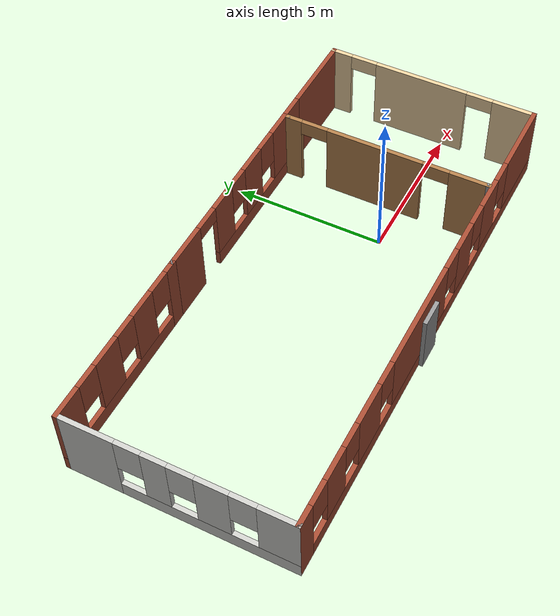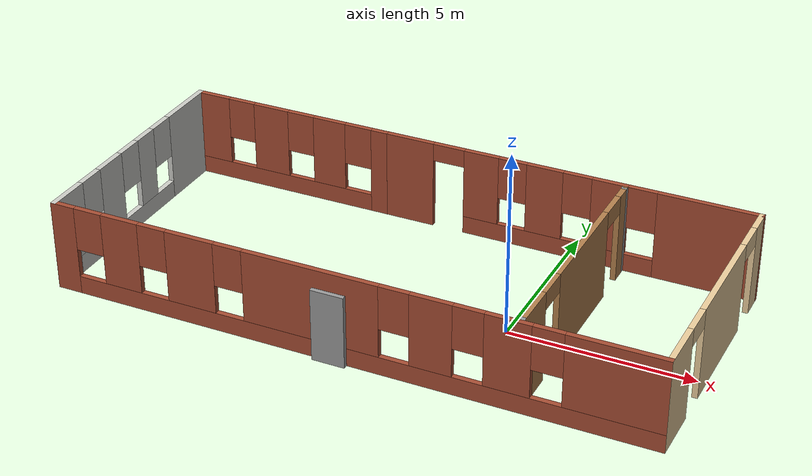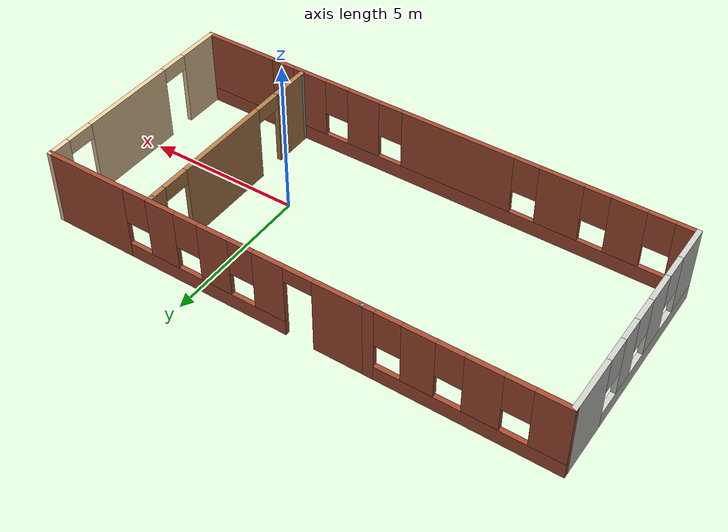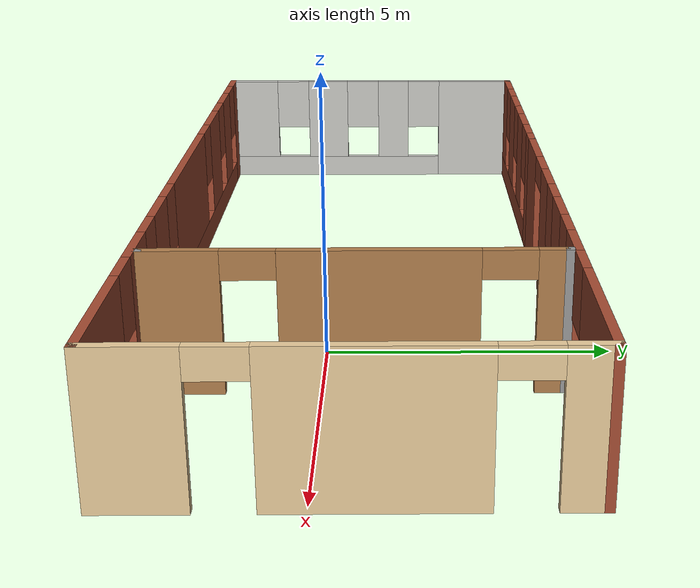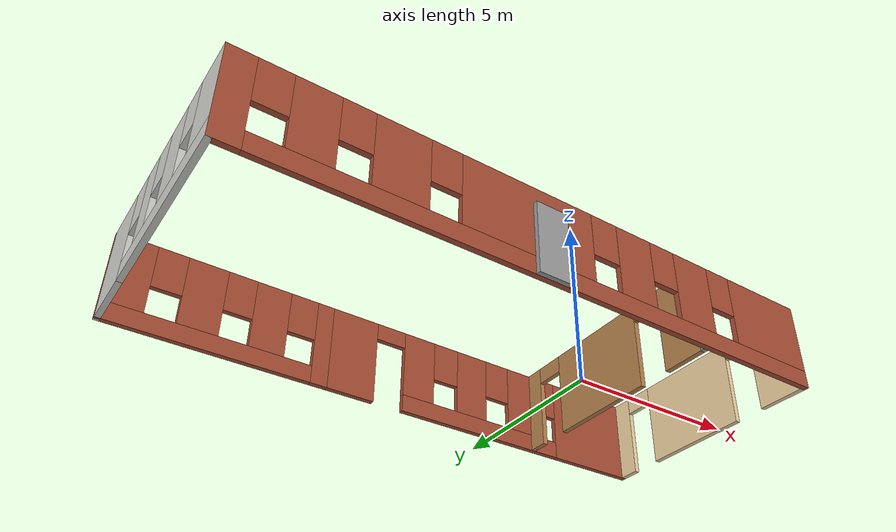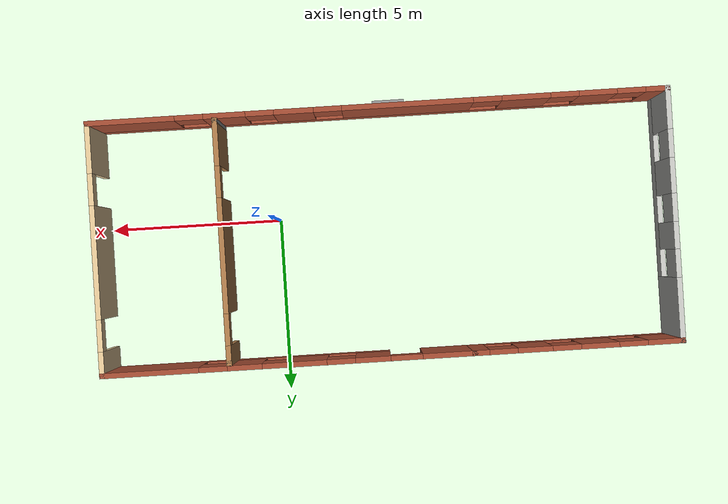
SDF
<?xml version='1.0'?>
<sdf version='1.6'>
  <model name='building'>
    <pose frame=''>-3.0512 0.573941 0 0 -0 0</pose>
    <link name='Door_1'>
      <collision name='Door_1_Collision'>
        <geometry>
          <box>
            <size>0.9 0.17 2</size>
          </box>
        </geometry>
        <pose frame=''>0 0 1 0 -0 0</pose>
      </collision>
      <visual name='Door_1_Visual'>
        <pose frame=''>0 0 1 0 -0 0</pose>
        <geometry>
          <box>
            <size>0.9 0.17 2</size>
          </box>
        </geometry>
        <material>
          <script>
            <uri>file://media/materials/scripts/gazebo.material</uri>
            <name>Gazebo/Grey</name>
          </script>
        </material>
      </visual>
      <pose frame=''>-0.312637 -3.66675 0 0 -0 0</pose>
    </link>
    <link name='Wall_0'>
      <pose frame=''>-5.25 3.55 0 0 -0 3.14159</pose>
      <visual name='Wall_0_Visual_0'>
        <pose frame=''>-2.75771 0 1.25 0 -0 0</pose>
        <geometry>
          <box>
            <size>0.484571 0.15 2.5</size>
          </box>
        </geometry>
        <material>
          <script>
            <uri>file://media/materials/scripts/gazebo.material</uri>
            <name>Gazebo/Bricks</name>
          </script>
          <ambient>0.921569 0.807843 0.615686 1</ambient>
        </material>
        <meta>
          <layer>0</layer>
        </meta>
      </visual>
      <collision name='Wall_0_Collision_0'>
        <geometry>
          <box>
            <size>0.484571 0.15 2.5</size>
          </box>
        </geometry>
        <pose frame=''>-2.75771 0 1.25 0 -0 0</pose>
      </collision>
      <visual name='Wall_0_Visual_1'>
        <pose frame=''>0.242286 0 0.25 0 -0 0</pose>
        <geometry>
          <box>
            <size>5.51543 0.15 0.5</size>
          </box>
        </geometry>
        <material>
          <script>
            <uri>file://media/materials/scripts/gazebo.material</uri>
            <name>Gazebo/Bricks</name>
          </script>
          <ambient>0.921569 0.807843 0.615686 1</ambient>
        </material>
        <meta>
          <layer>0</layer>
        </meta>
      </visual>
      <collision name='Wall_0_Collision_1'>
        <geometry>
          <box>
            <size>5.51543 0.15 0.5</size>
          </box>
        </geometry>
        <pose frame=''>0.242286 0 0.25 0 -0 0</pose>
      </collision>
      <visual name='Wall_0_Visual_2'>
        <pose frame=''>-1.2249 0 1.5 0 -0 0</pose>
        <geometry>
          <box>
            <size>0.981057 0.15 2</size>
          </box>
        </geometry>
        <material>
          <script>
            <uri>file://media/materials/scripts/gazebo.material</uri>
            <name>Gazebo/Bricks</name>
          </script>
          <ambient>0.921569 0.807843 0.615686 1</ambient>
        </material>
        <meta>
          <layer>0</layer>
        </meta>
      </visual>
      <collision name='Wall_0_Collision_2'>
        <geometry>
          <box>
            <size>0.981057 0.15 2</size>
          </box>
        </geometry>
        <pose frame=''>-1.2249 0 1.5 0 -0 0</pose>
      </collision>
      <visual name='Wall_0_Visual_3'>
        <pose frame=''>0.602418 0 1.5 0 -0 0</pose>
        <geometry>
          <box>
            <size>1.07358 0.15 2</size>
          </box>
        </geometry>
        <material>
          <script>
            <uri>file://media/materials/scripts/gazebo.material</uri>
            <name>Gazebo/Bricks</name>
          </script>
          <ambient>0.921569 0.807843 0.615686 1</ambient>
        </material>
        <meta>
          <layer>0</layer>
        </meta>
      </visual>
      <collision name='Wall_0_Collision_3'>
        <geometry>
          <box>
            <size>1.07358 0.15 2</size>
          </box>
        </geometry>
        <pose frame=''>0.602418 0 1.5 0 -0 0</pose>
      </collision>
      <visual name='Wall_0_Visual_4'>
        <pose frame=''>2.4696 0 1.5 0 -0 0</pose>
        <geometry>
          <box>
            <size>1.06079 0.15 2</size>
          </box>
        </geometry>
        <material>
          <script>
            <uri>file://media/materials/scripts/gazebo.material</uri>
            <name>Gazebo/Bricks</name>
          </script>
          <ambient>0.921569 0.807843 0.615686 1</ambient>
        </material>
        <meta>
          <layer>0</layer>
        </meta>
      </visual>
      <collision name='Wall_0_Collision_4'>
        <geometry>
          <box>
            <size>1.06079 0.15 2</size>
          </box>
        </geometry>
        <pose frame=''>2.4696 0 1.5 0 -0 0</pose>
      </collision>
      <visual name='Wall_0_Visual_5'>
        <pose frame=''>-2.11543 0 1.9 0 -0 0</pose>
        <geometry>
          <box>
            <size>0.8 0.15 1.2</size>
          </box>
        </geometry>
        <material>
          <script>
            <uri>file://media/materials/scripts/gazebo.material</uri>
            <name>Gazebo/Bricks</name>
          </script>
          <ambient>0.921569 0.807843 0.615686 1</ambient>
        </material>
        <meta>
          <layer>0</layer>
        </meta>
      </visual>
      <collision name='Wall_0_Collision_5'>
        <geometry>
          <box>
            <size>0.8 0.15 1.2</size>
          </box>
        </geometry>
        <pose frame=''>-2.11543 0 1.9 0 -0 0</pose>
      </collision>
      <visual name='Wall_0_Visual_6'>
        <pose frame=''>-0.334372 0 1.9 0 -0 0</pose>
        <geometry>
          <box>
            <size>0.8 0.15 1.2</size>
          </box>
        </geometry>
        <material>
          <script>
            <uri>file://media/materials/scripts/gazebo.material</uri>
            <name>Gazebo/Bricks</name>
          </script>
          <ambient>0.921569 0.807843 0.615686 1</ambient>
        </material>
        <meta>
          <layer>0</layer>
        </meta>
      </visual>
      <collision name='Wall_0_Collision_6'>
        <geometry>
          <box>
            <size>0.8 0.15 1.2</size>
          </box>
        </geometry>
        <pose frame=''>-0.334372 0 1.9 0 -0 0</pose>
      </collision>
      <visual name='Wall_0_Visual_7'>
        <pose frame=''>1.53921 0 1.9 0 -0 0</pose>
        <geometry>
          <box>
            <size>0.8 0.15 1.2</size>
          </box>
        </geometry>
        <material>
          <script>
            <uri>file://media/materials/scripts/gazebo.material</uri>
            <name>Gazebo/Bricks</name>
          </script>
          <ambient>0.921569 0.807843 0.615686 1</ambient>
        </material>
        <meta>
          <layer>0</layer>
        </meta>
      </visual>
      <collision name='Wall_0_Collision_7'>
        <geometry>
          <box>
            <size>0.8 0.15 1.2</size>
          </box>
        </geometry>
        <pose frame=''>1.53921 0 1.9 0 -0 0</pose>
      </collision>
    </link>
    <link name='Wall_1'>
      <pose frame=''>-8.175 0 0 0 0 -1.5708</pose>
      <visual name='Wall_1_Visual_0'>
        <pose frame=''>-2.70036 0 1.25 0 -0 0</pose>
        <geometry>
          <box>
            <size>1.84928 0.15 2.5</size>
          </box>
        </geometry>
        <material>
          <script>
            <uri>file://media/materials/scripts/gazebo.material</uri>
            <name>Gazebo/CeilingTiled</name>
          </script>
          <ambient>0.921569 0.807843 0.615686 1</ambient>
        </material>
        <meta>
          <layer>0</layer>
        </meta>
      </visual>
      <collision name='Wall_1_Collision_0'>
        <geometry>
          <box>
            <size>1.84928 0.15 2.5</size>
          </box>
        </geometry>
        <pose frame=''>-2.70036 0 1.25 0 -0 0</pose>
      </collision>
      <visual name='Wall_1_Visual_1'>
        <pose frame=''>0.924639 0 0.25 0 -0 0</pose>
        <geometry>
          <box>
            <size>5.40072 0.15 0.5</size>
          </box>
        </geometry>
        <material>
          <script>
            <uri>file://media/materials/scripts/gazebo.material</uri>
            <name>Gazebo/CeilingTiled</name>
          </script>
          <ambient>0.921569 0.807843 0.615686 1</ambient>
        </material>
        <meta>
          <layer>0</layer>
        </meta>
      </visual>
      <collision name='Wall_1_Collision_1'>
        <geometry>
          <box>
            <size>5.40072 0.15 0.5</size>
          </box>
        </geometry>
        <pose frame=''>0.924639 0 0.25 0 -0 0</pose>
      </collision>
      <visual name='Wall_1_Visual_2'>
        <pose frame=''>-0.589282 0 1.5 0 -0 0</pose>
        <geometry>
          <box>
            <size>0.772881 0.15 2</size>
          </box>
        </geometry>
        <material>
          <script>
            <uri>file://media/materials/scripts/gazebo.material</uri>
            <name>Gazebo/CeilingTiled</name>
          </script>
          <ambient>0.921569 0.807843 0.615686 1</ambient>
        </material>
        <meta>
          <layer>0</layer>
        </meta>
      </visual>
      <collision name='Wall_1_Collision_2'>
        <geometry>
          <box>
            <size>0.772881 0.15 2</size>
          </box>
        </geometry>
        <pose frame=''>-0.589282 0 1.5 0 -0 0</pose>
      </collision>
      <visual name='Wall_1_Visual_3'>
        <pose frame=''>1.09925 0 1.5 0 -0 0</pose>
        <geometry>
          <box>
            <size>1.00419 0.15 2</size>
          </box>
        </geometry>
        <material>
          <script>
            <uri>file://media/materials/scripts/gazebo.material</uri>
            <name>Gazebo/CeilingTiled</name>
          </script>
          <ambient>0.921569 0.807843 0.615686 1</ambient>
        </material>
        <meta>
          <layer>0</layer>
        </meta>
      </visual>
      <collision name='Wall_1_Collision_3'>
        <geometry>
          <box>
            <size>1.00419 0.15 2</size>
          </box>
        </geometry>
        <pose frame=''>1.09925 0 1.5 0 -0 0</pose>
      </collision>
      <visual name='Wall_1_Visual_4'>
        <pose frame=''>3.01317 0 1.5 0 -0 0</pose>
        <geometry>
          <box>
            <size>1.22365 0.15 2</size>
          </box>
        </geometry>
        <material>
          <script>
            <uri>file://media/materials/scripts/gazebo.material</uri>
            <name>Gazebo/CeilingTiled</name>
          </script>
          <ambient>0.921569 0.807843 0.615686 1</ambient>
        </material>
        <meta>
          <layer>0</layer>
        </meta>
      </visual>
      <collision name='Wall_1_Collision_4'>
        <geometry>
          <box>
            <size>1.22365 0.15 2</size>
          </box>
        </geometry>
        <pose frame=''>3.01317 0 1.5 0 -0 0</pose>
      </collision>
      <visual name='Wall_1_Visual_5'>
        <pose frame=''>-1.37572 0 1.9 0 -0 0</pose>
        <geometry>
          <box>
            <size>0.8 0.15 1.2</size>
          </box>
        </geometry>
        <material>
          <script>
            <uri>file://media/materials/scripts/gazebo.material</uri>
            <name>Gazebo/CeilingTiled</name>
          </script>
          <ambient>0.921569 0.807843 0.615686 1</ambient>
        </material>
        <meta>
          <layer>0</layer>
        </meta>
      </visual>
      <collision name='Wall_1_Collision_5'>
        <geometry>
          <box>
            <size>0.8 0.15 1.2</size>
          </box>
        </geometry>
        <pose frame=''>-1.37572 0 1.9 0 -0 0</pose>
      </collision>
      <visual name='Wall_1_Visual_6'>
        <pose frame=''>0.197158 0 1.9 0 -0 0</pose>
        <geometry>
          <box>
            <size>0.8 0.15 1.2</size>
          </box>
        </geometry>
        <material>
          <script>
            <uri>file://media/materials/scripts/gazebo.material</uri>
            <name>Gazebo/CeilingTiled</name>
          </script>
          <ambient>0.921569 0.807843 0.615686 1</ambient>
        </material>
        <meta>
          <layer>0</layer>
        </meta>
      </visual>
      <collision name='Wall_1_Collision_6'>
        <geometry>
          <box>
            <size>0.8 0.15 1.2</size>
          </box>
        </geometry>
        <pose frame=''>0.197158 0 1.9 0 -0 0</pose>
      </collision>
      <visual name='Wall_1_Visual_7'>
        <pose frame=''>2.00135 0 1.9 0 -0 0</pose>
        <geometry>
          <box>
            <size>0.8 0.15 1.2</size>
          </box>
        </geometry>
        <material>
          <script>
            <uri>file://media/materials/scripts/gazebo.material</uri>
            <name>Gazebo/CeilingTiled</name>
          </script>
          <ambient>0.921569 0.807843 0.615686 1</ambient>
        </material>
        <meta>
          <layer>0</layer>
        </meta>
      </visual>
      <collision name='Wall_1_Collision_7'>
        <geometry>
          <box>
            <size>0.8 0.15 1.2</size>
          </box>
        </geometry>
        <pose frame=''>2.00135 0 1.9 0 -0 0</pose>
      </collision>
    </link>
    <link name='Wall_10'>
      <pose frame=''>4.59105 -0.011889 0 0 -0 1.5708</pose>
      <visual name='Wall_10_Visual_0'>
        <pose frame=''>-2.81938 0 1.25 0 -0 0</pose>
        <geometry>
          <box>
            <size>1.36124 0.15 2.5</size>
          </box>
        </geometry>
        <material>
          <script>
            <uri>file://media/materials/scripts/gazebo.material</uri>
            <name>Gazebo/Wood</name>
          </script>
          <ambient>1 1 1 1</ambient>
        </material>
        <meta>
          <layer>0</layer>
        </meta>
      </visual>
      <collision name='Wall_10_Collision_0'>
        <geometry>
          <box>
            <size>1.36124 0.15 2.5</size>
          </box>
        </geometry>
        <pose frame=''>-2.81938 0 1.25 0 -0 0</pose>
      </collision>
      <visual name='Wall_10_Visual_1'>
        <pose frame=''>0.392996 0 1.25 0 -0 0</pose>
        <geometry>
          <box>
            <size>3.26351 0.15 2.5</size>
          </box>
        </geometry>
        <material>
          <script>
            <uri>file://media/materials/scripts/gazebo.material</uri>
            <name>Gazebo/Wood</name>
          </script>
          <ambient>1 1 1 1</ambient>
        </material>
        <meta>
          <layer>0</layer>
        </meta>
      </visual>
      <collision name='Wall_10_Collision_1'>
        <geometry>
          <box>
            <size>3.26351 0.15 2.5</size>
          </box>
        </geometry>
        <pose frame=''>0.392996 0 1.25 0 -0 0</pose>
      </collision>
      <visual name='Wall_10_Visual_2'>
        <pose frame=''>3.21238 0 1.25 0 -0 0</pose>
        <geometry>
          <box>
            <size>0.575249 0.15 2.5</size>
          </box>
        </geometry>
        <material>
          <script>
            <uri>file://media/materials/scripts/gazebo.material</uri>
            <name>Gazebo/Wood</name>
          </script>
          <ambient>1 1 1 1</ambient>
        </material>
        <meta>
          <layer>0</layer>
        </meta>
      </visual>
      <collision name='Wall_10_Collision_2'>
        <geometry>
          <box>
            <size>0.575249 0.15 2.5</size>
          </box>
        </geometry>
        <pose frame=''>3.21238 0 1.25 0 -0 0</pose>
      </collision>
      <visual name='Wall_10_Visual_3'>
        <pose frame=''>-1.68876 0 2.25 0 -0 0</pose>
        <geometry>
          <box>
            <size>0.9 0.15 0.5</size>
          </box>
        </geometry>
        <material>
          <script>
            <uri>file://media/materials/scripts/gazebo.material</uri>
            <name>Gazebo/Wood</name>
          </script>
          <ambient>1 1 1 1</ambient>
        </material>
        <meta>
          <layer>0</layer>
        </meta>
      </visual>
      <collision name='Wall_10_Collision_3'>
        <geometry>
          <box>
            <size>0.9 0.15 0.5</size>
          </box>
        </geometry>
        <pose frame=''>-1.68876 0 2.25 0 -0 0</pose>
      </collision>
      <visual name='Wall_10_Visual_4'>
        <pose frame=''>2.47475 0 2.25 0 -0 0</pose>
        <geometry>
          <box>
            <size>0.9 0.15 0.5</size>
          </box>
        </geometry>
        <material>
          <script>
            <uri>file://media/materials/scripts/gazebo.material</uri>
            <name>Gazebo/Wood</name>
          </script>
          <ambient>1 1 1 1</ambient>
        </material>
        <meta>
          <layer>0</layer>
        </meta>
      </visual>
      <collision name='Wall_10_Collision_4'>
        <geometry>
          <box>
            <size>0.9 0.15 0.5</size>
          </box>
        </geometry>
        <pose frame=''>2.47475 0 2.25 0 -0 0</pose>
      </collision>
    </link>
    <link name='Wall_11'>
      <collision name='Wall_11_Collision'>
        <geometry>
          <box>
            <size>0.15 0.15 2.5</size>
          </box>
        </geometry>
        <pose frame=''>0 0 1.25 0 -0 0</pose>
      </collision>
      <visual name='Wall_11_Visual'>
        <pose frame=''>0 0 1.25 0 -0 0</pose>
        <geometry>
          <box>
            <size>0.15 0.15 2.5</size>
          </box>
        </geometry>
        <material>
          <script>
            <uri>file://media/materials/scripts/gazebo.material</uri>
            <name>Gazebo/Grey</name>
          </script>
          <ambient>1 1 1 1</ambient>
        </material>
        <meta>
          <layer>0</layer>
        </meta>
      </visual>
      <pose frame=''>4.59105 3.41311 0 0 -0 0</pose>
    </link>
    <link name='Wall_2'>
      <pose frame=''>0 -3.55 0 0 -0 0</pose>
      <visual name='Wall_2_Visual_0'>
        <pose frame=''>-7.90465 0 1.25 0 -0 0</pose>
        <geometry>
          <box>
            <size>0.690703 0.15 2.5</size>
          </box>
        </geometry>
        <material>
          <script>
            <uri>file://media/materials/scripts/gazebo.material</uri>
            <name>Gazebo/Bricks</name>
          </script>
          <ambient>0.921569 0.807843 0.615686 1</ambient>
        </material>
        <meta>
          <layer>0</layer>
        </meta>
      </visual>
      <collision name='Wall_2_Collision_0'>
        <geometry>
          <box>
            <size>0.690703 0.15 2.5</size>
          </box>
        </geometry>
        <pose frame=''>-7.90465 0 1.25 0 -0 0</pose>
      </collision>
      <visual name='Wall_2_Visual_1'>
        <pose frame=''>0.345351 0 0.25 0 -0 0</pose>
        <geometry>
          <box>
            <size>15.8093 0.15 0.5</size>
          </box>
        </geometry>
        <material>
          <script>
            <uri>file://media/materials/scripts/gazebo.material</uri>
            <name>Gazebo/Bricks</name>
          </script>
          <ambient>0.921569 0.807843 0.615686 1</ambient>
        </material>
        <meta>
          <layer>0</layer>
        </meta>
      </visual>
      <collision name='Wall_2_Collision_1'>
        <geometry>
          <box>
            <size>15.8093 0.15 0.5</size>
          </box>
        </geometry>
        <pose frame=''>0.345351 0 0.25 0 -0 0</pose>
      </collision>
      <visual name='Wall_2_Visual_2'>
        <pose frame=''>-6.22251 0 1.5 0 -0 0</pose>
        <geometry>
          <box>
            <size>1.07358 0.15 2</size>
          </box>
        </geometry>
        <material>
          <script>
            <uri>file://media/materials/scripts/gazebo.material</uri>
            <name>Gazebo/Bricks</name>
          </script>
          <ambient>0.921569 0.807843 0.615686 1</ambient>
        </material>
        <meta>
          <layer>0</layer>
        </meta>
      </visual>
      <collision name='Wall_2_Collision_2'>
        <geometry>
          <box>
            <size>1.07358 0.15 2</size>
          </box>
        </geometry>
        <pose frame=''>-6.22251 0 1.5 0 -0 0</pose>
      </collision>
      <visual name='Wall_2_Visual_3'>
        <pose frame=''>-4.19858 0 1.5 0 -0 0</pose>
        <geometry>
          <box>
            <size>1.37428 0.15 2</size>
          </box>
        </geometry>
        <material>
          <script>
            <uri>file://media/materials/scripts/gazebo.material</uri>
            <name>Gazebo/Bricks</name>
          </script>
          <ambient>0.921569 0.807843 0.615686 1</ambient>
        </material>
        <meta>
          <layer>0</layer>
        </meta>
      </visual>
      <collision name='Wall_2_Collision_3'>
        <geometry>
          <box>
            <size>1.37428 0.15 2</size>
          </box>
        </geometry>
        <pose frame=''>-4.19858 0 1.5 0 -0 0</pose>
      </collision>
      <visual name='Wall_2_Visual_4'>
        <pose frame=''>-0.856206 0 1.5 0 -0 0</pose>
        <geometry>
          <box>
            <size>3.71047 0.15 2</size>
          </box>
        </geometry>
        <material>
          <script>
            <uri>file://media/materials/scripts/gazebo.material</uri>
            <name>Gazebo/Bricks</name>
          </script>
          <ambient>0.921569 0.807843 0.615686 1</ambient>
        </material>
        <meta>
          <layer>0</layer>
        </meta>
      </visual>
      <collision name='Wall_2_Collision_4'>
        <geometry>
          <box>
            <size>3.71047 0.15 2</size>
          </box>
        </geometry>
        <pose frame=''>-0.856206 0 1.5 0 -0 0</pose>
      </collision>
      <visual name='Wall_2_Visual_5'>
        <pose frame=''>2.35895 0 1.5 0 -0 0</pose>
        <geometry>
          <box>
            <size>1.11984 0.15 2</size>
          </box>
        </geometry>
        <material>
          <script>
            <uri>file://media/materials/scripts/gazebo.material</uri>
            <name>Gazebo/Bricks</name>
          </script>
          <ambient>0.921569 0.807843 0.615686 1</ambient>
        </material>
        <meta>
          <layer>0</layer>
        </meta>
      </visual>
      <collision name='Wall_2_Collision_5'>
        <geometry>
          <box>
            <size>1.11984 0.15 2</size>
          </box>
        </geometry>
        <pose frame=''>2.35895 0 1.5 0 -0 0</pose>
      </collision>
      <visual name='Wall_2_Visual_6'>
        <pose frame=''>4.31348 0 1.5 0 -0 0</pose>
        <geometry>
          <box>
            <size>1.18923 0.15 2</size>
          </box>
        </geometry>
        <material>
          <script>
            <uri>file://media/materials/scripts/gazebo.material</uri>
            <name>Gazebo/Bricks</name>
          </script>
          <ambient>0.921569 0.807843 0.615686 1</ambient>
        </material>
        <meta>
          <layer>0</layer>
        </meta>
      </visual>
      <collision name='Wall_2_Collision_6'>
        <geometry>
          <box>
            <size>1.18923 0.15 2</size>
          </box>
        </geometry>
        <pose frame=''>4.31348 0 1.5 0 -0 0</pose>
      </collision>
      <visual name='Wall_2_Visual_7'>
        <pose frame=''>6.97905 0 1.5 0 -0 0</pose>
        <geometry>
          <box>
            <size>2.5419 0.15 2</size>
          </box>
        </geometry>
        <material>
          <script>
            <uri>file://media/materials/scripts/gazebo.material</uri>
            <name>Gazebo/Bricks</name>
          </script>
          <ambient>0.921569 0.807843 0.615686 1</ambient>
        </material>
        <meta>
          <layer>0</layer>
        </meta>
      </visual>
      <collision name='Wall_2_Collision_7'>
        <geometry>
          <box>
            <size>2.5419 0.15 2</size>
          </box>
        </geometry>
        <pose frame=''>6.97905 0 1.5 0 -0 0</pose>
      </collision>
      <visual name='Wall_2_Visual_8'>
        <pose frame=''>-7.1593 0 1.9 0 -0 0</pose>
        <geometry>
          <box>
            <size>0.8 0.15 1.2</size>
          </box>
        </geometry>
        <material>
          <script>
            <uri>file://media/materials/scripts/gazebo.material</uri>
            <name>Gazebo/Bricks</name>
          </script>
          <ambient>0.921569 0.807843 0.615686 1</ambient>
        </material>
        <meta>
          <layer>0</layer>
        </meta>
      </visual>
      <collision name='Wall_2_Collision_8'>
        <geometry>
          <box>
            <size>0.8 0.15 1.2</size>
          </box>
        </geometry>
        <pose frame=''>-7.1593 0 1.9 0 -0 0</pose>
      </collision>
      <visual name='Wall_2_Visual_9'>
        <pose frame=''>-5.28572 0 1.9 0 -0 0</pose>
        <geometry>
          <box>
            <size>0.8 0.15 1.2</size>
          </box>
        </geometry>
        <material>
          <script>
            <uri>file://media/materials/scripts/gazebo.material</uri>
            <name>Gazebo/Bricks</name>
          </script>
          <ambient>0.921569 0.807843 0.615686 1</ambient>
        </material>
        <meta>
          <layer>0</layer>
        </meta>
      </visual>
      <collision name='Wall_2_Collision_9'>
        <geometry>
          <box>
            <size>0.8 0.15 1.2</size>
          </box>
        </geometry>
        <pose frame=''>-5.28572 0 1.9 0 -0 0</pose>
      </collision>
      <visual name='Wall_2_Visual_10'>
        <pose frame=''>-3.11144 0 1.9 0 -0 0</pose>
        <geometry>
          <box>
            <size>0.8 0.15 1.2</size>
          </box>
        </geometry>
        <material>
          <script>
            <uri>file://media/materials/scripts/gazebo.material</uri>
            <name>Gazebo/Bricks</name>
          </script>
          <ambient>0.921569 0.807843 0.615686 1</ambient>
        </material>
        <meta>
          <layer>0</layer>
        </meta>
      </visual>
      <collision name='Wall_2_Collision_10'>
        <geometry>
          <box>
            <size>0.8 0.15 1.2</size>
          </box>
        </geometry>
        <pose frame=''>-3.11144 0 1.9 0 -0 0</pose>
      </collision>
      <visual name='Wall_2_Visual_11'>
        <pose frame=''>1.39903 0 1.9 0 -0 0</pose>
        <geometry>
          <box>
            <size>0.8 0.15 1.2</size>
          </box>
        </geometry>
        <material>
          <script>
            <uri>file://media/materials/scripts/gazebo.material</uri>
            <name>Gazebo/Bricks</name>
          </script>
          <ambient>0.921569 0.807843 0.615686 1</ambient>
        </material>
        <meta>
          <layer>0</layer>
        </meta>
      </visual>
      <collision name='Wall_2_Collision_11'>
        <geometry>
          <box>
            <size>0.8 0.15 1.2</size>
          </box>
        </geometry>
        <pose frame=''>1.39903 0 1.9 0 -0 0</pose>
      </collision>
      <visual name='Wall_2_Visual_12'>
        <pose frame=''>3.31887 0 1.9 0 -0 0</pose>
        <geometry>
          <box>
            <size>0.8 0.15 1.2</size>
          </box>
        </geometry>
        <material>
          <script>
            <uri>file://media/materials/scripts/gazebo.material</uri>
            <name>Gazebo/Bricks</name>
          </script>
          <ambient>0.921569 0.807843 0.615686 1</ambient>
        </material>
        <meta>
          <layer>0</layer>
        </meta>
      </visual>
      <collision name='Wall_2_Collision_12'>
        <geometry>
          <box>
            <size>0.8 0.15 1.2</size>
          </box>
        </geometry>
        <pose frame=''>3.31887 0 1.9 0 -0 0</pose>
      </collision>
      <visual name='Wall_2_Visual_13'>
        <pose frame=''>5.3081 0 1.9 0 -0 0</pose>
        <geometry>
          <box>
            <size>0.8 0.15 1.2</size>
          </box>
        </geometry>
        <material>
          <script>
            <uri>file://media/materials/scripts/gazebo.material</uri>
            <name>Gazebo/Bricks</name>
          </script>
          <ambient>0.921569 0.807843 0.615686 1</ambient>
        </material>
        <meta>
          <layer>0</layer>
        </meta>
      </visual>
      <collision name='Wall_2_Collision_13'>
        <geometry>
          <box>
            <size>0.8 0.15 1.2</size>
          </box>
        </geometry>
        <pose frame=''>5.3081 0 1.9 0 -0 0</pose>
      </collision>
    </link>
    <link name='Wall_3'>
      <pose frame=''>8.175 0 0 0 -0 1.5708</pose>
      <visual name='Wall_3_Visual_0'>
        <pose frame=''>-2.88782 0 1.25 0 -0 0</pose>
        <geometry>
          <box>
            <size>1.47435 0.15 2.5</size>
          </box>
        </geometry>
        <material>
          <script>
            <uri>file://media/materials/scripts/gazebo.material</uri>
            <name>Gazebo/Grey</name>
          </script>
          <ambient>0.921569 0.807843 0.615686 1</ambient>
        </material>
        <meta>
          <layer>0</layer>
        </meta>
      </visual>
      <collision name='Wall_3_Collision_0'>
        <geometry>
          <box>
            <size>1.47435 0.15 2.5</size>
          </box>
        </geometry>
        <pose frame=''>-2.88782 0 1.25 0 -0 0</pose>
      </collision>
      <visual name='Wall_3_Visual_1'>
        <pose frame=''>0.357976 0 1.25 0 -0 0</pose>
        <geometry>
          <box>
            <size>3.21725 0.15 2.5</size>
          </box>
        </geometry>
        <material>
          <script>
            <uri>file://media/materials/scripts/gazebo.material</uri>
            <name>Gazebo/Grey</name>
          </script>
          <ambient>0.921569 0.807843 0.615686 1</ambient>
        </material>
        <meta>
          <layer>0</layer>
        </meta>
      </visual>
      <collision name='Wall_3_Collision_1'>
        <geometry>
          <box>
            <size>3.21725 0.15 2.5</size>
          </box>
        </geometry>
        <pose frame=''>0.357976 0 1.25 0 -0 0</pose>
      </collision>
      <visual name='Wall_3_Visual_2'>
        <pose frame=''>3.2458 0 1.25 0 -0 0</pose>
        <geometry>
          <box>
            <size>0.7584 0.15 2.5</size>
          </box>
        </geometry>
        <material>
          <script>
            <uri>file://media/materials/scripts/gazebo.material</uri>
            <name>Gazebo/Grey</name>
          </script>
          <ambient>0.921569 0.807843 0.615686 1</ambient>
        </material>
        <meta>
          <layer>0</layer>
        </meta>
      </visual>
      <collision name='Wall_3_Collision_2'>
        <geometry>
          <box>
            <size>0.7584 0.15 2.5</size>
          </box>
        </geometry>
        <pose frame=''>3.2458 0 1.25 0 -0 0</pose>
      </collision>
      <visual name='Wall_3_Visual_3'>
        <pose frame=''>-1.70065 0 2.25 0 -0 0</pose>
        <geometry>
          <box>
            <size>0.9 0.15 0.5</size>
          </box>
        </geometry>
        <material>
          <script>
            <uri>file://media/materials/scripts/gazebo.material</uri>
            <name>Gazebo/Grey</name>
          </script>
          <ambient>0.921569 0.807843 0.615686 1</ambient>
        </material>
        <meta>
          <layer>0</layer>
        </meta>
      </visual>
      <collision name='Wall_3_Collision_3'>
        <geometry>
          <box>
            <size>0.9 0.15 0.5</size>
          </box>
        </geometry>
        <pose frame=''>-1.70065 0 2.25 0 -0 0</pose>
      </collision>
      <visual name='Wall_3_Visual_4'>
        <pose frame=''>2.4166 0 2.25 0 -0 0</pose>
        <geometry>
          <box>
            <size>0.9 0.15 0.5</size>
          </box>
        </geometry>
        <material>
          <script>
            <uri>file://media/materials/scripts/gazebo.material</uri>
            <name>Gazebo/Grey</name>
          </script>
          <ambient>0.921569 0.807843 0.615686 1</ambient>
        </material>
        <meta>
          <layer>0</layer>
        </meta>
      </visual>
      <collision name='Wall_3_Collision_4'>
        <geometry>
          <box>
            <size>0.9 0.15 0.5</size>
          </box>
        </geometry>
        <pose frame=''>2.4166 0 2.25 0 -0 0</pose>
      </collision>
    </link>
    <link name='Wall_4'>
      <pose frame=''>2.925 3.55 0 0 -0 3.14159</pose>
      <visual name='Wall_4_Visual_0'>
        <pose frame=''>-3.92683 0 1.25 0 -0 0</pose>
        <geometry>
          <box>
            <size>2.79634 0.15 2.5</size>
          </box>
        </geometry>
        <material>
          <script>
            <uri>file://media/materials/scripts/gazebo.material</uri>
            <name>Gazebo/Bricks</name>
          </script>
          <ambient>0.921569 0.807843 0.615686 1</ambient>
        </material>
        <meta>
          <layer>0</layer>
        </meta>
      </visual>
      <collision name='Wall_4_Collision_0'>
        <geometry>
          <box>
            <size>2.79634 0.15 2.5</size>
          </box>
        </geometry>
        <pose frame=''>-3.92683 0 1.25 0 -0 0</pose>
      </collision>
      <visual name='Wall_4_Visual_1'>
        <pose frame=''>4.55258 0 1.25 0 -0 0</pose>
        <geometry>
          <box>
            <size>1.54484 0.15 2.5</size>
          </box>
        </geometry>
        <material>
          <script>
            <uri>file://media/materials/scripts/gazebo.material</uri>
            <name>Gazebo/Bricks</name>
          </script>
          <ambient>0.921569 0.807843 0.615686 1</ambient>
        </material>
        <meta>
          <layer>0</layer>
        </meta>
      </visual>
      <collision name='Wall_4_Collision_1'>
        <geometry>
          <box>
            <size>1.54484 0.15 2.5</size>
          </box>
        </geometry>
        <pose frame=''>4.55258 0 1.25 0 -0 0</pose>
      </collision>
      <visual name='Wall_4_Visual_2'>
        <pose frame=''>0.175748 0 0.25 0 -0 0</pose>
        <geometry>
          <box>
            <size>5.40882 0.15 0.5</size>
          </box>
        </geometry>
        <material>
          <script>
            <uri>file://media/materials/scripts/gazebo.material</uri>
            <name>Gazebo/Bricks</name>
          </script>
          <ambient>0.921569 0.807843 0.615686 1</ambient>
        </material>
        <meta>
          <layer>0</layer>
        </meta>
      </visual>
      <collision name='Wall_4_Collision_2'>
        <geometry>
          <box>
            <size>5.40882 0.15 0.5</size>
          </box>
        </geometry>
        <pose frame=''>0.175748 0 0.25 0 -0 0</pose>
      </collision>
      <visual name='Wall_4_Visual_3'>
        <pose frame=''>-1.23813 0 1.5 0 -0 0</pose>
        <geometry>
          <box>
            <size>0.981057 0.15 2</size>
          </box>
        </geometry>
        <material>
          <script>
            <uri>file://media/materials/scripts/gazebo.material</uri>
            <name>Gazebo/Bricks</name>
          </script>
          <ambient>0.921569 0.807843 0.615686 1</ambient>
        </material>
        <meta>
          <layer>0</layer>
        </meta>
      </visual>
      <collision name='Wall_4_Collision_3'>
        <geometry>
          <box>
            <size>0.981057 0.15 2</size>
          </box>
        </geometry>
        <pose frame=''>-1.23813 0 1.5 0 -0 0</pose>
      </collision>
      <visual name='Wall_4_Visual_4'>
        <pose frame=''>0.566052 0 1.5 0 -0 0</pose>
        <geometry>
          <box>
            <size>1.02732 0.15 2</size>
          </box>
        </geometry>
        <material>
          <script>
            <uri>file://media/materials/scripts/gazebo.material</uri>
            <name>Gazebo/Bricks</name>
          </script>
          <ambient>0.921569 0.807843 0.615686 1</ambient>
        </material>
        <meta>
          <layer>0</layer>
        </meta>
      </visual>
      <collision name='Wall_4_Collision_4'>
        <geometry>
          <box>
            <size>1.02732 0.15 2</size>
          </box>
        </geometry>
        <pose frame=''>0.566052 0 1.5 0 -0 0</pose>
      </collision>
      <visual name='Wall_4_Visual_5'>
        <pose frame=''>2.37994 0 1.5 0 -0 0</pose>
        <geometry>
          <box>
            <size>1.00045 0.15 2</size>
          </box>
        </geometry>
        <material>
          <script>
            <uri>file://media/materials/scripts/gazebo.material</uri>
            <name>Gazebo/Bricks</name>
          </script>
          <ambient>0.921569 0.807843 0.615686 1</ambient>
        </material>
        <meta>
          <layer>0</layer>
        </meta>
      </visual>
      <collision name='Wall_4_Collision_5'>
        <geometry>
          <box>
            <size>1.00045 0.15 2</size>
          </box>
        </geometry>
        <pose frame=''>2.37994 0 1.5 0 -0 0</pose>
      </collision>
      <visual name='Wall_4_Visual_6'>
        <pose frame=''>-2.12866 0 1.9 0 -0 0</pose>
        <geometry>
          <box>
            <size>0.8 0.15 1.2</size>
          </box>
        </geometry>
        <material>
          <script>
            <uri>file://media/materials/scripts/gazebo.material</uri>
            <name>Gazebo/Bricks</name>
          </script>
          <ambient>0.921569 0.807843 0.615686 1</ambient>
        </material>
        <meta>
          <layer>0</layer>
        </meta>
      </visual>
      <collision name='Wall_4_Collision_6'>
        <geometry>
          <box>
            <size>0.8 0.15 1.2</size>
          </box>
        </geometry>
        <pose frame=''>-2.12866 0 1.9 0 -0 0</pose>
      </collision>
      <visual name='Wall_4_Visual_7'>
        <pose frame=''>-0.347607 0 1.9 0 -0 0</pose>
        <geometry>
          <box>
            <size>0.8 0.15 1.2</size>
          </box>
        </geometry>
        <material>
          <script>
            <uri>file://media/materials/scripts/gazebo.material</uri>
            <name>Gazebo/Bricks</name>
          </script>
          <ambient>0.921569 0.807843 0.615686 1</ambient>
        </material>
        <meta>
          <layer>0</layer>
        </meta>
      </visual>
      <collision name='Wall_4_Collision_7'>
        <geometry>
          <box>
            <size>0.8 0.15 1.2</size>
          </box>
        </geometry>
        <pose frame=''>-0.347607 0 1.9 0 -0 0</pose>
      </collision>
      <visual name='Wall_4_Visual_8'>
        <pose frame=''>1.47971 0 1.9 0 -0 0</pose>
        <geometry>
          <box>
            <size>0.8 0.15 1.2</size>
          </box>
        </geometry>
        <material>
          <script>
            <uri>file://media/materials/scripts/gazebo.material</uri>
            <name>Gazebo/Bricks</name>
          </script>
          <ambient>0.921569 0.807843 0.615686 1</ambient>
        </material>
        <meta>
          <layer>0</layer>
        </meta>
      </visual>
      <collision name='Wall_4_Collision_8'>
        <geometry>
          <box>
            <size>0.8 0.15 1.2</size>
          </box>
        </geometry>
        <pose frame=''>1.47971 0 1.9 0 -0 0</pose>
      </collision>
      <visual name='Wall_4_Visual_9'>
        <pose frame=''>3.33016 0 2.25 0 -0 0</pose>
        <geometry>
          <box>
            <size>0.9 0.15 0.5</size>
          </box>
        </geometry>
        <material>
          <script>
            <uri>file://media/materials/scripts/gazebo.material</uri>
            <name>Gazebo/Bricks</name>
          </script>
          <ambient>0.921569 0.807843 0.615686 1</ambient>
        </material>
        <meta>
          <layer>0</layer>
        </meta>
      </visual>
      <collision name='Wall_4_Collision_9'>
        <geometry>
          <box>
            <size>0.9 0.15 0.5</size>
          </box>
        </geometry>
        <pose frame=''>3.33016 0 2.25 0 -0 0</pose>
      </collision>
    </link>
    <link name='Wall_5'>
      <collision name='Wall_5_Collision'>
        <geometry>
          <box>
            <size>0.15 0.15 2.5</size>
          </box>
        </geometry>
        <pose frame=''>0 0 1.25 0 -0 0</pose>
      </collision>
      <visual name='Wall_5_Visual'>
        <pose frame=''>0 0 1.25 0 -0 0</pose>
        <geometry>
          <box>
            <size>0.15 0.15 2.5</size>
          </box>
        </geometry>
        <material>
          <script>
            <uri>file://media/materials/scripts/gazebo.material</uri>
            <name>Gazebo/Grey</name>
          </script>
          <ambient>1 1 1 1</ambient>
        </material>
        <meta>
          <layer>0</layer>
        </meta>
      </visual>
      <pose frame=''>-2.325 3.55 0 0 -0 0</pose>
    </link>
    <link name='Wall_8'>
      <collision name='Wall_8_Collision'>
        <geometry>
          <box>
            <size>0.15 0.15 2.5</size>
          </box>
        </geometry>
        <pose frame=''>0 0 1.25 0 -0 0</pose>
      </collision>
      <visual name='Wall_8_Visual'>
        <pose frame=''>0 0 1.25 0 -0 0</pose>
        <geometry>
          <box>
            <size>0.15 0.15 2.5</size>
          </box>
        </geometry>
        <material>
          <script>
            <uri>file://media/materials/scripts/gazebo.material</uri>
            <name>Gazebo/Grey</name>
          </script>
          <ambient>1 1 1 1</ambient>
        </material>
        <meta>
          <layer>0</layer>
        </meta>
      </visual>
      <pose frame=''>4.59105 -3.43689 0 0 -0 0</pose>
    </link>
    <static>1</static>
  </model>
</sdf>
